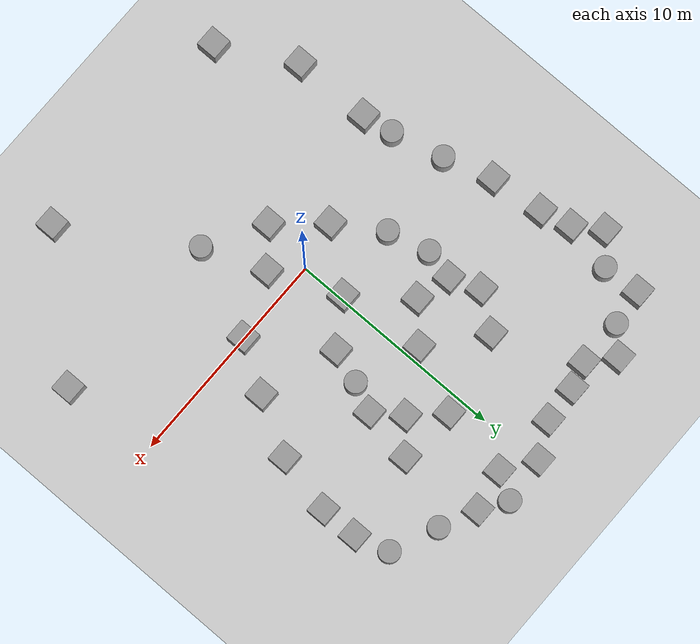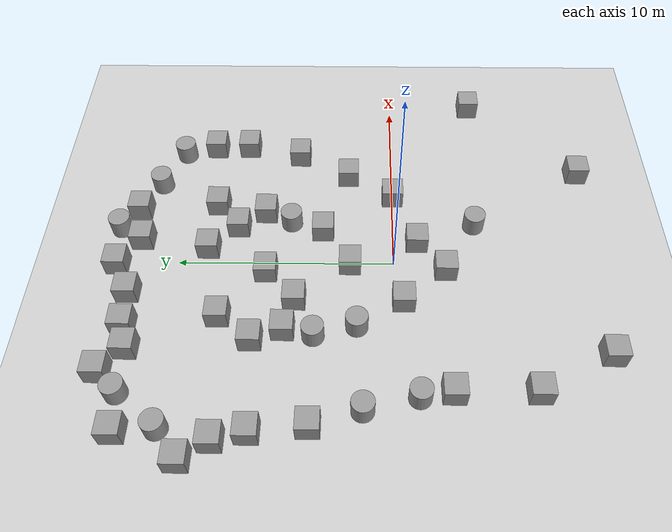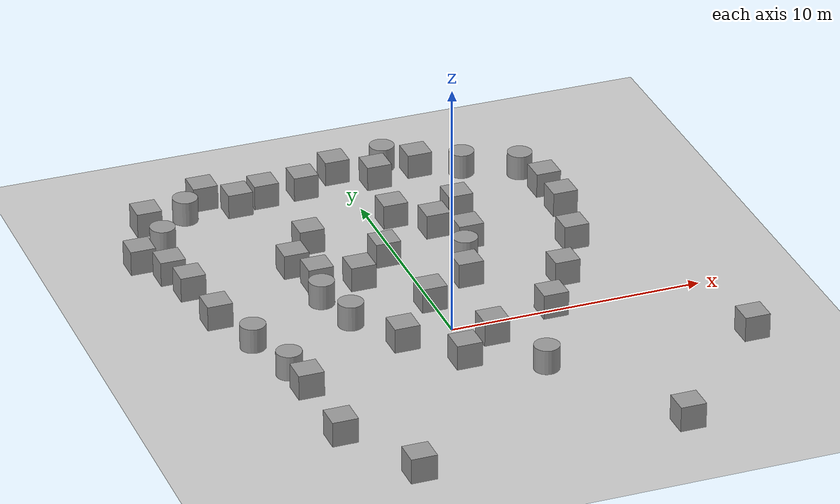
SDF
<sdf version="1.6">
 <world name="default">
  <scene><ambient>0.4 0.4 0.4 1</ambient><background>0.7 0.7 0.7 1</background><shadows>0</shadows></scene>
  <light name="sun" type="directional">
   <cast_shadows>0</cast_shadows>
   <pose>0 0 10 0 -0 0</pose>
   <diffuse>0.8 0.8 0.8 1</diffuse>
   <specular>0.2 0.2 0.2 1</specular>
   <attenuation>
    <range>1000</range>
    <constant>0.9</constant>
    <linear>0.01</linear>
    <quadratic>0.001</quadratic>
   </attenuation>
   <direction>-0.5 0.1 -0.9</direction>
  </light>
  <model name="ground_plane">
   <static>1</static>
   <link name="link">
    <collision name="collision">
     <geometry><plane><normal>0 0 1</normal><size>100 100</size></plane></geometry>
     <surface><friction><ode><mu>100</mu><mu2>50</mu2></ode></friction></surface>
    </collision>
    <visual name="visual">
     <cast_shadows>0</cast_shadows>
     <geometry><plane><normal>0 0 1</normal><size>100 100</size></plane></geometry>
     <material>
      <script><uri>file://media/materials/scripts/gazebo.material</uri><name>Gazebo/Grey</name></script>
     </material>
    </visual>
   </link>
  </model>
  <physics name="default_physics" default="0" type="ode">
   <real_time_update_rate>1000</real_time_update_rate>
   <max_step_size>0.001</max_step_size>
   <real_time_factor>1</real_time_factor>
   <ode>
    <solver>
     <type>quick</type>
     <iters>150</iters>
     <precon_iters>0</precon_iters>
     <sor>1.4</sor>
     <use_dynamic_moi_rescaling>1</use_dynamic_moi_rescaling>
    </solver>
    <constraints>
     <cfm>1e-05</cfm>
     <erp>0.2</erp>
     <contact_max_correcting_vel>2000</contact_max_correcting_vel>
     <contact_surface_layer>0.01</contact_surface_layer>
    </constraints>
   </ode>
  </physics>
  <gravity>0 0 -9.8</gravity>
  <magnetic_field>6e-06 2.3e-05 -4.2e-05</magnetic_field>
  <atmosphere type="adiabatic"/>
  <spherical_coordinates>
   <surface_model>EARTH_WGS84</surface_model>
   <latitude_deg>0</latitude_deg>
   <longitude_deg>0</longitude_deg>
   <elevation>0</elevation>
   <heading_deg>0</heading_deg>
  </spherical_coordinates>
  <light name="user_spot_light_0" type="spot">
   <pose>2.99649 2.01794 1 0 -0 0</pose>
   <diffuse>0.5 0.5 0.5 1</diffuse>
   <specular>0.1 0.1 0.1 1</specular>
   <direction>0 0 -1</direction>
   <attenuation>
    <range>20</range>
    <constant>0.5</constant>
    <linear>0.01</linear>
    <quadratic>0.001</quadratic>
   </attenuation>
   <cast_shadows>0</cast_shadows>
   <spot><inner_angle>0.6</inner_angle><outer_angle>1</outer_angle><falloff>1</falloff></spot>
  </light>
  <light name="user_spot_light_1" type="spot">
   <pose>4.97421 7.05292 1 0 -0 0</pose>
   <diffuse>0.5 0.5 0.5 1</diffuse>
   <specular>0.1 0.1 0.1 1</specular>
   <direction>0 0 -1</direction>
   <attenuation>
    <range>20</range>
    <constant>0.5</constant>
    <linear>0.01</linear>
    <quadratic>0.001</quadratic>
   </attenuation>
   <cast_shadows>0</cast_shadows>
   <spot><inner_angle>0.6</inner_angle><outer_angle>1</outer_angle><falloff>1</falloff></spot>
  </light>
  <light name="user_spot_light_2" type="spot">
   <pose>5.00519 9.95841 1 0 -0 0</pose>
   <diffuse>0.5 0.5 0.5 1</diffuse>
   <specular>0.1 0.1 0.1 1</specular>
   <direction>0 0 -1</direction>
   <attenuation>
    <range>20</range>
    <constant>0.5</constant>
    <linear>0.01</linear>
    <quadratic>0.001</quadratic>
   </attenuation>
   <cast_shadows>0</cast_shadows>
   <spot><inner_angle>0.6</inner_angle><outer_angle>1</outer_angle><falloff>1</falloff></spot>
  </light>
  <light name="user_spot_light_3" type="spot">
   <pose>-6.05257 10.0097 1 0 -0 0</pose>
   <diffuse>0.5 0.5 0.5 1</diffuse>
   <specular>0.1 0.1 0.1 1</specular>
   <direction>0 0 -1</direction>
   <attenuation>
    <range>20</range>
    <constant>0.5</constant>
    <linear>0.01</linear>
    <quadratic>0.001</quadratic>
   </attenuation>
   <cast_shadows>0</cast_shadows>
   <spot><inner_angle>0.6</inner_angle><outer_angle>1</outer_angle><falloff>1</falloff></spot>
  </light>
  <light name="user_spot_light_4" type="spot">
   <pose>-6.04868 3.07764 1 0 -0 0</pose>
   <diffuse>0.5 0.5 0.5 1</diffuse>
   <specular>0.1 0.1 0.1 1</specular>
   <direction>0 0 -1</direction>
   <attenuation>
    <range>20</range>
    <constant>0.5</constant>
    <linear>0.01</linear>
    <quadratic>0.001</quadratic>
   </attenuation>
   <cast_shadows>0</cast_shadows>
   <spot><inner_angle>0.6</inner_angle><outer_angle>1</outer_angle><falloff>1</falloff></spot>
  </light>
  <light name="user_spot_light_5" type="spot">
   <pose>-3.03355 -4.9648 1 0 -0 0</pose>
   <diffuse>0.5 0.5 0.5 1</diffuse>
   <specular>0.1 0.1 0.1 1</specular>
   <direction>0 0 -1</direction>
   <attenuation>
    <range>20</range>
    <constant>0.5</constant>
    <linear>0.01</linear>
    <quadratic>0.001</quadratic>
   </attenuation>
   <cast_shadows>0</cast_shadows>
   <spot><inner_angle>0.6</inner_angle><outer_angle>1</outer_angle><falloff>1</falloff></spot>
  </light>
  <light name="user_spot_light_6" type="spot">
   <pose>2.95488 -8.02776 1 0 -0 0</pose>
   <diffuse>0.5 0.5 0.5 1</diffuse>
   <specular>0.1 0.1 0.1 1</specular>
   <direction>0 0 -1</direction>
   <attenuation>
    <range>20</range>
    <constant>0.5</constant>
    <linear>0.01</linear>
    <quadratic>0.001</quadratic>
   </attenuation>
   <cast_shadows>0</cast_shadows>
   <spot><inner_angle>0.6</inner_angle><outer_angle>1</outer_angle><falloff>1</falloff></spot>
  </light>
  <light name="user_spot_light_7" type="spot">
   <pose>7.01005 -3.95731 1 0 -0 0</pose>
   <diffuse>0.5 0.5 0.5 1</diffuse>
   <specular>0.1 0.1 0.1 1</specular>
   <direction>0 0 -1</direction>
   <attenuation>
    <range>20</range>
    <constant>0.5</constant>
    <linear>0.01</linear>
    <quadratic>0.001</quadratic>
   </attenuation>
   <cast_shadows>0</cast_shadows>
   <spot><inner_angle>0.6</inner_angle><outer_angle>1</outer_angle><falloff>1</falloff></spot>
  </light>
  <light name="user_spot_light_8" type="spot">
   <pose>9.95353 0.036944 1 0 -0 0</pose>
   <diffuse>0.5 0.5 0.5 1</diffuse>
   <specular>0.1 0.1 0.1 1</specular>
   <direction>0 0 -1</direction>
   <attenuation>
    <range>20</range>
    <constant>0.5</constant>
    <linear>0.01</linear>
    <quadratic>0.001</quadratic>
   </attenuation>
   <cast_shadows>0</cast_shadows>
   <spot><inner_angle>0.6</inner_angle><outer_angle>1</outer_angle><falloff>1</falloff></spot>
  </light>
  <model name="unit_box">
   <pose>-0.110138 2.02069 0.5 0 -0 0</pose>
   <link name="link">
    <inertial>
     <mass>1</mass>
     <inertia>
      <ixx>0.166667</ixx>
      <ixy>0</ixy>
      <ixz>0</ixz>
      <iyy>0.166667</iyy>
      <iyz>0</iyz>
      <izz>0.166667</izz>
     </inertia>
    </inertial>
    <collision name="collision"><geometry><box><size>1 1 1</size></box></geometry></collision>
    <visual name="visual">
     <geometry><box><size>1 1 1</size></box></geometry>
     <material>
      <script><name>Gazebo/Grey</name><uri>file://media/materials/scripts/gazebo.material</uri></script>
     </material>
    </visual>
   </link>
  </model>
  <model name="unit_box_0">
   <pose>1.18907 -1.10093 0.5 0 -0 0</pose>
   <link name="link">
    <inertial>
     <mass>1</mass>
     <inertia>
      <ixx>0.166667</ixx>
      <ixy>0</ixy>
      <ixz>0</ixz>
      <iyy>0.166667</iyy>
      <iyz>0</iyz>
      <izz>0.166667</izz>
     </inertia>
    </inertial>
    <collision name="collision"><geometry><box><size>1 1 1</size></box></geometry></collision>
    <visual name="visual">
     <geometry><box><size>1 1 1</size></box></geometry>
     <material>
      <script><name>Gazebo/Grey</name><uri>file://media/materials/scripts/gazebo.material</uri></script>
     </material>
    </visual>
   </link>
  </model>
  <model name="unit_box_1">
   <pose>3.98694 -0.006782 0.5 0 -0 0</pose>
   <link name="link">
    <inertial>
     <mass>1</mass>
     <inertia>
      <ixx>0.166667</ixx>
      <ixy>0</ixy>
      <ixz>0</ixz>
      <iyy>0.166667</iyy>
      <iyz>0</iyz>
      <izz>0.166667</izz>
     </inertia>
    </inertial>
    <collision name="collision"><geometry><box><size>1 1 1</size></box></geometry></collision>
    <visual name="visual">
     <geometry><box><size>1 1 1</size></box></geometry>
     <material>
      <script><name>Gazebo/Grey</name><uri>file://media/materials/scripts/gazebo.material</uri></script>
     </material>
    </visual>
   </link>
  </model>
  <model name="unit_box_2">
   <pose>1.84922 3.31867 0.5 0 -0 0</pose>
   <link name="link">
    <inertial>
     <mass>1</mass>
     <inertia>
      <ixx>0.166667</ixx>
      <ixy>0</ixy>
      <ixz>0</ixz>
      <iyy>0.166667</iyy>
      <iyz>0</iyz>
      <izz>0.166667</izz>
     </inertia>
    </inertial>
    <collision name="collision"><geometry><box><size>1 1 1</size></box></geometry></collision>
    <visual name="visual">
     <geometry><box><size>1 1 1</size></box></geometry>
     <material>
      <script><name>Gazebo/Grey</name><uri>file://media/materials/scripts/gazebo.material</uri></script>
     </material>
    </visual>
   </link>
  </model>
  <model name="unit_box_3">
   <pose>5.31989 2.15664 0.5 0 -0 0</pose>
   <link name="link">
    <inertial>
     <mass>1</mass>
     <inertia>
      <ixx>0.166667</ixx>
      <ixy>0</ixy>
      <ixz>0</ixz>
      <iyy>0.166667</iyy>
      <iyz>0</iyz>
      <izz>0.166667</izz>
     </inertia>
    </inertial>
    <collision name="collision"><geometry><box><size>1 1 1</size></box></geometry></collision>
    <visual name="visual">
     <geometry><box><size>1 1 1</size></box></geometry>
     <material>
      <script><name>Gazebo/Grey</name><uri>file://media/materials/scripts/gazebo.material</uri></script>
     </material>
    </visual>
   </link>
  </model>
  <model name="unit_box_4">
   <pose>6.69057 4.63414 0.5 0 -0 0</pose>
   <link name="link">
    <inertial>
     <mass>1</mass>
     <inertia>
      <ixx>0.166667</ixx>
      <ixy>0</ixy>
      <ixz>0</ixz>
      <iyy>0.166667</iyy>
      <iyz>0</iyz>
      <izz>0.166667</izz>
     </inertia>
    </inertial>
    <collision name="collision"><geometry><box><size>1 1 1</size></box></geometry></collision>
    <visual name="visual">
     <geometry><box><size>1 1 1</size></box></geometry>
     <material>
      <script><name>Gazebo/Grey</name><uri>file://media/materials/scripts/gazebo.material</uri></script>
     </material>
    </visual>
   </link>
  </model>
  <model name="unit_box_5">
   <pose>2.92873 6.08927 0.5 0 -0 0</pose>
   <link name="link">
    <inertial>
     <mass>1</mass>
     <inertia>
      <ixx>0.166667</ixx>
      <ixy>0</ixy>
      <ixz>0</ixz>
      <iyy>0.166667</iyy>
      <iyz>0</iyz>
      <izz>0.166667</izz>
     </inertia>
    </inertial>
    <collision name="collision"><geometry><box><size>1 1 1</size></box></geometry></collision>
    <visual name="visual">
     <geometry><box><size>1 1 1</size></box></geometry>
     <material>
      <script><name>Gazebo/Grey</name><uri>file://media/materials/scripts/gazebo.material</uri></script>
     </material>
    </visual>
   </link>
  </model>
  <model name="unit_box_6">
   <pose>7.28308 7.28413 0.5 0 -0 0</pose>
   <link name="link">
    <inertial>
     <mass>1</mass>
     <inertia>
      <ixx>0.166667</ixx>
      <ixy>0</ixy>
      <ixz>0</ixz>
      <iyy>0.166667</iyy>
      <iyz>0</iyz>
      <izz>0.166667</izz>
     </inertia>
    </inertial>
    <collision name="collision"><geometry><box><size>1 1 1</size></box></geometry></collision>
    <visual name="visual">
     <geometry><box><size>1 1 1</size></box></geometry>
     <material>
      <script><name>Gazebo/Grey</name><uri>file://media/materials/scripts/gazebo.material</uri></script>
     </material>
    </visual>
   </link>
  </model>
  <model name="unit_cylinder">
   <pose>2.36445 4.8414 0.5 0 -0 0</pose>
   <link name="link">
    <inertial>
     <mass>1</mass>
     <inertia><ixx>0.145833</ixx><ixy>0</ixy><ixz>0</ixz><iyy>0.145833</iyy><iyz>0</iyz><izz>0.125</izz></inertia>
    </inertial>
    <collision name="collision">
     <geometry><cylinder><radius>0.5</radius><length>1</length></cylinder></geometry>
    </collision>
    <visual name="visual">
     <geometry><cylinder><radius>0.5</radius><length>1</length></cylinder></geometry>
     <material>
      <script><name>Gazebo/Grey</name><uri>file://media/materials/scripts/gazebo.material</uri></script>
     </material>
    </visual>
   </link>
  </model>
  <model name="unit_cylinder_0">
   <pose>4.72709 11.4383 0.5 -0 -0 -0</pose>
   <link name="link">
    <inertial>
     <mass>1</mass>
     <inertia><ixx>0.145833</ixx><ixy>0</ixy><ixz>0</ixz><iyy>0.145833</iyy><iyz>0</iyz><izz>0.125</izz></inertia>
    </inertial>
    <collision name="collision">
     <geometry><cylinder><radius>0.5</radius><length>1</length></cylinder></geometry>
    </collision>
    <visual name="visual">
     <geometry><cylinder><radius>0.5</radius><length>1</length></cylinder></geometry>
     <material>
      <script><name>Gazebo/Grey</name><uri>file://media/materials/scripts/gazebo.material</uri></script>
     </material>
    </visual>
   </link>
  </model>
  <model name="unit_cylinder_1">
   <pose>6.83244 10.5301 0.5 0 -0 0</pose>
   <link name="link">
    <inertial>
     <mass>1</mass>
     <inertia><ixx>0.145833</ixx><ixy>0</ixy><ixz>0</ixz><iyy>0.145833</iyy><iyz>0</iyz><izz>0.125</izz></inertia>
    </inertial>
    <collision name="collision">
     <geometry><cylinder><radius>0.5</radius><length>1</length></cylinder></geometry>
    </collision>
    <visual name="visual">
     <geometry><cylinder><radius>0.5</radius><length>1</length></cylinder></geometry>
     <material>
      <script><name>Gazebo/Grey</name><uri>file://media/materials/scripts/gazebo.material</uri></script>
     </material>
    </visual>
   </link>
  </model>
  <model name="unit_box_7">
   <pose>3.38625 8.46279 0.5 0 -0 0</pose>
   <link name="link">
    <inertial>
     <mass>1</mass>
     <inertia>
      <ixx>0.166667</ixx>
      <ixy>0</ixy>
      <ixz>0</ixz>
      <iyy>0.166667</iyy>
      <iyz>0</iyz>
      <izz>0.166667</izz>
     </inertia>
    </inertial>
    <collision name="collision"><geometry><box><size>1 1 1</size></box></geometry></collision>
    <visual name="visual">
     <geometry><box><size>1 1 1</size></box></geometry>
     <material>
      <script><name>Gazebo/Grey</name><uri>file://media/materials/scripts/gazebo.material</uri></script>
     </material>
    </visual>
   </link>
  </model>
  <model name="unit_box_8">
   <pose>0.769093 8.65438 0.5 0 -0 0</pose>
   <link name="link">
    <inertial>
     <mass>1</mass>
     <inertia>
      <ixx>0.166667</ixx>
      <ixy>0</ixy>
      <ixz>0</ixz>
      <iyy>0.166667</iyy>
      <iyz>0</iyz>
      <izz>0.166667</izz>
     </inertia>
    </inertial>
    <collision name="collision"><geometry><box><size>1 1 1</size></box></geometry></collision>
    <visual name="visual">
     <geometry><box><size>1 1 1</size></box></geometry>
     <material>
      <script><name>Gazebo/Grey</name><uri>file://media/materials/scripts/gazebo.material</uri></script>
     </material>
    </visual>
   </link>
  </model>
  <model name="unit_box_9">
   <pose>-0.548805 5.87007 0.5 0 -0 0</pose>
   <link name="link">
    <inertial>
     <mass>1</mass>
     <inertia>
      <ixx>0.166667</ixx>
      <ixy>0</ixy>
      <ixz>0</ixz>
      <iyy>0.166667</iyy>
      <iyz>0</iyz>
      <izz>0.166667</izz>
     </inertia>
    </inertial>
    <collision name="collision"><geometry><box><size>1 1 1</size></box></geometry></collision>
    <visual name="visual">
     <geometry><box><size>1 1 1</size></box></geometry>
     <material>
      <script><name>Gazebo/Grey</name><uri>file://media/materials/scripts/gazebo.material</uri></script>
     </material>
    </visual>
   </link>
  </model>
  <model name="unit_box_10">
   <pose>-2.94586 7.81511 0.5 0 -0 0</pose>
   <link name="link">
    <inertial>
     <mass>1</mass>
     <inertia>
      <ixx>0.166667</ixx>
      <ixy>0</ixy>
      <ixz>0</ixz>
      <iyy>0.166667</iyy>
      <iyz>0</iyz>
      <izz>0.166667</izz>
     </inertia>
    </inertial>
    <collision name="collision"><geometry><box><size>1 1 1</size></box></geometry></collision>
    <visual name="visual">
     <geometry><box><size>1 1 1</size></box></geometry>
     <material>
      <script><name>Gazebo/Grey</name><uri>file://media/materials/scripts/gazebo.material</uri></script>
     </material>
    </visual>
   </link>
  </model>
  <model name="unit_box_11">
   <pose>-2.052 4.49656 0.5 0 -0 0</pose>
   <link name="link">
    <inertial>
     <mass>1</mass>
     <inertia>
      <ixx>0.166667</ixx>
      <ixy>0</ixy>
      <ixz>0</ixz>
      <iyy>0.166667</iyy>
      <iyz>0</iyz>
      <izz>0.166667</izz>
     </inertia>
    </inertial>
    <collision name="collision"><geometry><box><size>1 1 1</size></box></geometry></collision>
    <visual name="visual">
     <geometry><box><size>1 1 1</size></box></geometry>
     <material>
      <script><name>Gazebo/Grey</name><uri>file://media/materials/scripts/gazebo.material</uri></script>
     </material>
    </visual>
   </link>
  </model>
  <model name="unit_box_12">
   <pose>-9.47395 8.63115 0.5 0 -0 0</pose>
   <link name="link">
    <inertial>
     <mass>1</mass>
     <inertia>
      <ixx>0.166667</ixx>
      <ixy>0</ixy>
      <ixz>0</ixz>
      <iyy>0.166667</iyy>
      <iyz>0</iyz>
      <izz>0.166667</izz>
     </inertia>
    </inertial>
    <collision name="collision"><geometry><box><size>1 1 1</size></box></geometry></collision>
    <visual name="visual">
     <geometry><box><size>1 1 1</size></box></geometry>
     <material>
      <script><name>Gazebo/Grey</name><uri>file://media/materials/scripts/gazebo.material</uri></script>
     </material>
    </visual>
   </link>
  </model>
  <model name="unit_box_13">
   <pose>-8.34128 11.3644 0.5 0 -0 0</pose>
   <link name="link">
    <inertial>
     <mass>1</mass>
     <inertia>
      <ixx>0.166667</ixx>
      <ixy>0</ixy>
      <ixz>0</ixz>
      <iyy>0.166667</iyy>
      <iyz>0</iyz>
      <izz>0.166667</izz>
     </inertia>
    </inertial>
    <collision name="collision"><geometry><box><size>1 1 1</size></box></geometry></collision>
    <visual name="visual">
     <geometry><box><size>1 1 1</size></box></geometry>
     <material>
      <script><name>Gazebo/Grey</name><uri>file://media/materials/scripts/gazebo.material</uri></script>
     </material>
    </visual>
   </link>
  </model>
  <model name="unit_box_14">
   <pose>-4.11679 6.284 0.5 0 -0 0</pose>
   <link name="link">
    <inertial>
     <mass>1</mass>
     <inertia>
      <ixx>0.166667</ixx>
      <ixy>0</ixy>
      <ixz>0</ixz>
      <iyy>0.166667</iyy>
      <iyz>0</iyz>
      <izz>0.166667</izz>
     </inertia>
    </inertial>
    <collision name="collision"><geometry><box><size>1 1 1</size></box></geometry></collision>
    <visual name="visual">
     <geometry><box><size>1 1 1</size></box></geometry>
     <material>
      <script><name>Gazebo/Grey</name><uri>file://media/materials/scripts/gazebo.material</uri></script>
     </material>
    </visual>
   </link>
  </model>
  <model name="unit_cylinder_2">
   <pose>-8.20309 9.67764 0.5 -0 -0 -0</pose>
   <link name="link">
    <inertial>
     <mass>1</mass>
     <inertia><ixx>0.145833</ixx><ixy>0</ixy><ixz>0</ixz><iyy>0.145833</iyy><iyz>0</iyz><izz>0.125</izz></inertia>
    </inertial>
    <collision name="collision">
     <geometry><cylinder><radius>0.5</radius><length>1</length></cylinder></geometry>
    </collision>
    <visual name="visual">
     <geometry><cylinder><radius>0.5</radius><length>1</length></cylinder></geometry>
     <material>
      <script><name>Gazebo/Grey</name><uri>file://media/materials/scripts/gazebo.material</uri></script>
     </material>
    </visual>
   </link>
  </model>
  <model name="unit_cylinder_3">
   <pose>-3.89265 3.58332 0.5 0 -0 0</pose>
   <link name="link">
    <inertial>
     <mass>1</mass>
     <inertia><ixx>0.145833</ixx><ixy>0</ixy><ixz>0</ixz><iyy>0.145833</iyy><iyz>0</iyz><izz>0.125</izz></inertia>
    </inertial>
    <collision name="collision">
     <geometry><cylinder><radius>0.5</radius><length>1</length></cylinder></geometry>
    </collision>
    <visual name="visual">
     <geometry><cylinder><radius>0.5</radius><length>1</length></cylinder></geometry>
     <material>
      <script><name>Gazebo/Grey</name><uri>file://media/materials/scripts/gazebo.material</uri></script>
     </material>
    </visual>
   </link>
  </model>
  <model name="unit_cylinder_4">
   <pose>-3.41207 1.68362 0.5 -0 -0 -0</pose>
   <link name="link">
    <inertial>
     <mass>1</mass>
     <inertia><ixx>0.145833</ixx><ixy>0</ixy><ixz>0</ixz><iyy>0.145833</iyy><iyz>0</iyz><izz>0.125</izz></inertia>
    </inertial>
    <collision name="collision">
     <geometry><cylinder><radius>0.5</radius><length>1</length></cylinder></geometry>
    </collision>
    <visual name="visual">
     <geometry><cylinder><radius>0.5</radius><length>1</length></cylinder></geometry>
     <material>
      <script><name>Gazebo/Grey</name><uri>file://media/materials/scripts/gazebo.material</uri></script>
     </material>
    </visual>
   </link>
  </model>
  <model name="unit_box_15">
   <pose>-8.32917 6.02056 0.5 0 -0 0</pose>
   <link name="link">
    <inertial>
     <mass>1</mass>
     <inertia>
      <ixx>0.166667</ixx>
      <ixy>0</ixy>
      <ixz>0</ixz>
      <iyy>0.166667</iyy>
      <iyz>0</iyz>
      <izz>0.166667</izz>
     </inertia>
    </inertial>
    <collision name="collision"><geometry><box><size>1 1 1</size></box></geometry></collision>
    <visual name="visual">
     <geometry><box><size>1 1 1</size></box></geometry>
     <material>
      <script><name>Gazebo/Grey</name><uri>file://media/materials/scripts/gazebo.material</uri></script>
     </material>
    </visual>
   </link>
  </model>
  <model name="unit_box_16">
   <pose>-3.39292 11.9062 0.5 0 -0 0</pose>
   <link name="link">
    <inertial>
     <mass>1</mass>
     <inertia>
      <ixx>0.166667</ixx>
      <ixy>0</ixy>
      <ixz>0</ixz>
      <iyy>0.166667</iyy>
      <iyz>0</iyz>
      <izz>0.166667</izz>
     </inertia>
    </inertial>
    <collision name="collision"><geometry><box><size>1 1 1</size></box></geometry></collision>
    <visual name="visual">
     <geometry><box><size>1 1 1</size></box></geometry>
     <material>
      <script><name>Gazebo/Grey</name><uri>file://media/materials/scripts/gazebo.material</uri></script>
     </material>
    </visual>
   </link>
  </model>
  <model name="unit_box_17">
   <pose>-0.162619 12.7806 0.5 0 -0 0</pose>
   <link name="link">
    <inertial>
     <mass>1</mass>
     <inertia>
      <ixx>0.166667</ixx>
      <ixy>0</ixy>
      <ixz>0</ixz>
      <iyy>0.166667</iyy>
      <iyz>0</iyz>
      <izz>0.166667</izz>
     </inertia>
    </inertial>
    <collision name="collision"><geometry><box><size>1 1 1</size></box></geometry></collision>
    <visual name="visual">
     <geometry><box><size>1 1 1</size></box></geometry>
     <material>
      <script><name>Gazebo/Grey</name><uri>file://media/materials/scripts/gazebo.material</uri></script>
     </material>
    </visual>
   </link>
  </model>
  <model name="unit_box_18">
   <pose>-1.72371 12.0104 0.5 0 -0 0</pose>
   <link name="link">
    <inertial>
     <mass>1</mass>
     <inertia>
      <ixx>0.166667</ixx>
      <ixy>0</ixy>
      <ixz>0</ixz>
      <iyy>0.166667</iyy>
      <iyz>0</iyz>
      <izz>0.166667</izz>
     </inertia>
    </inertial>
    <collision name="collision"><geometry><box><size>1 1 1</size></box></geometry></collision>
    <visual name="visual">
     <geometry><box><size>1 1 1</size></box></geometry>
     <material>
      <script><name>Gazebo/Grey</name><uri>file://media/materials/scripts/gazebo.material</uri></script>
     </material>
    </visual>
   </link>
  </model>
  <model name="unit_box_19">
   <pose>-5.68011 12.5489 0.5 0 -0 0</pose>
   <link name="link">
    <inertial>
     <mass>1</mass>
     <inertia>
      <ixx>0.166667</ixx>
      <ixy>0</ixy>
      <ixz>0</ixz>
      <iyy>0.166667</iyy>
      <iyz>0</iyz>
      <izz>0.166667</izz>
     </inertia>
    </inertial>
    <collision name="collision"><geometry><box><size>1 1 1</size></box></geometry></collision>
    <visual name="visual">
     <geometry><box><size>1 1 1</size></box></geometry>
     <material>
      <script><name>Gazebo/Grey</name><uri>file://media/materials/scripts/gazebo.material</uri></script>
     </material>
    </visual>
   </link>
  </model>
  <model name="unit_cylinder_5">
   <pose>1.94556 12.9796 0.5 0 -0 0</pose>
   <link name="link">
    <inertial>
     <mass>1</mass>
     <inertia><ixx>0.145833</ixx><ixy>0</ixy><ixz>0</ixz><iyy>0.145833</iyy><iyz>0</iyz><izz>0.125</izz></inertia>
    </inertial>
    <collision name="collision">
     <geometry><cylinder><radius>0.5</radius><length>1</length></cylinder></geometry>
    </collision>
    <visual name="visual">
     <geometry><cylinder><radius>0.5</radius><length>1</length></cylinder></geometry>
     <material>
      <script><name>Gazebo/Grey</name><uri>file://media/materials/scripts/gazebo.material</uri></script>
     </material>
    </visual>
   </link>
  </model>
  <model name="unit_box_20">
   <pose>3.08868 12.2019 0.5 0 -0 0</pose>
   <link name="link">
    <inertial>
     <mass>1</mass>
     <inertia>
      <ixx>0.166667</ixx>
      <ixy>0</ixy>
      <ixz>0</ixz>
      <iyy>0.166667</iyy>
      <iyz>0</iyz>
      <izz>0.166667</izz>
     </inertia>
    </inertial>
    <collision name="collision"><geometry><box><size>1 1 1</size></box></geometry></collision>
    <visual name="visual">
     <geometry><box><size>1 1 1</size></box></geometry>
     <material>
      <script><name>Gazebo/Grey</name><uri>file://media/materials/scripts/gazebo.material</uri></script>
     </material>
    </visual>
   </link>
  </model>
  <model name="unit_box_21">
   <pose>1.25012 11.8235 0.5 0 -0 0</pose>
   <link name="link">
    <inertial>
     <mass>1</mass>
     <inertia>
      <ixx>0.166667</ixx>
      <ixy>0</ixy>
      <ixz>0</ixz>
      <iyy>0.166667</iyy>
      <iyz>0</iyz>
      <izz>0.166667</izz>
     </inertia>
    </inertial>
    <collision name="collision"><geometry><box><size>1 1 1</size></box></geometry></collision>
    <visual name="visual">
     <geometry><box><size>1 1 1</size></box></geometry>
     <material>
      <script><name>Gazebo/Grey</name><uri>file://media/materials/scripts/gazebo.material</uri></script>
     </material>
    </visual>
   </link>
  </model>
  <model name="unit_cylinder_6">
   <pose>-6.67476 11.5787 0.5 -0 -0 -0</pose>
   <link name="link">
    <inertial>
     <mass>1</mass>
     <inertia><ixx>0.145833</ixx><ixy>0</ixy><ixz>0</ixz><iyy>0.145833</iyy><iyz>0</iyz><izz>0.125</izz></inertia>
    </inertial>
    <collision name="collision">
     <geometry><cylinder><radius>0.5</radius><length>1</length></cylinder></geometry>
    </collision>
    <visual name="visual">
     <geometry><cylinder><radius>0.5</radius><length>1</length></cylinder></geometry>
     <material>
      <script><name>Gazebo/Grey</name><uri>file://media/materials/scripts/gazebo.material</uri></script>
     </material>
    </visual>
   </link>
  </model>
  <model name="unit_box_22">
   <pose>-4.57103 11.5702 0.5 0 -0 0</pose>
   <link name="link">
    <inertial>
     <mass>1</mass>
     <inertia>
      <ixx>0.166667</ixx>
      <ixy>0</ixy>
      <ixz>0</ixz>
      <iyy>0.166667</iyy>
      <iyz>0</iyz>
      <izz>0.166667</izz>
     </inertia>
    </inertial>
    <collision name="collision"><geometry><box><size>1 1 1</size></box></geometry></collision>
    <visual name="visual">
     <geometry><box><size>1 1 1</size></box></geometry>
     <material>
      <script><name>Gazebo/Grey</name><uri>file://media/materials/scripts/gazebo.material</uri></script>
     </material>
    </visual>
   </link>
  </model>
  <model name="unit_box_23">
   <pose>-8.66905 7.42388 0.5 0 -0 0</pose>
   <link name="link">
    <inertial>
     <mass>1</mass>
     <inertia>
      <ixx>0.166667</ixx>
      <ixy>0</ixy>
      <ixz>0</ixz>
      <iyy>0.166667</iyy>
      <iyz>0</iyz>
      <izz>0.166667</izz>
     </inertia>
    </inertial>
    <collision name="collision"><geometry><box><size>1 1 1</size></box></geometry></collision>
    <visual name="visual">
     <geometry><box><size>1 1 1</size></box></geometry>
     <material>
      <script><name>Gazebo/Grey</name><uri>file://media/materials/scripts/gazebo.material</uri></script>
     </material>
    </visual>
   </link>
  </model>
  <model name="unit_box_24">
   <pose>-2.10483 -0.400888 0.5 0 -0 0</pose>
   <link name="link">
    <inertial>
     <mass>1</mass>
     <inertia>
      <ixx>0.166667</ixx>
      <ixy>0</ixy>
      <ixz>0</ixz>
      <iyy>0.166667</iyy>
      <iyz>0</iyz>
      <izz>0.166667</izz>
     </inertia>
    </inertial>
    <collision name="collision"><geometry><box><size>1 1 1</size></box></geometry></collision>
    <visual name="visual">
     <geometry><box><size>1 1 1</size></box></geometry>
     <material>
      <script><name>Gazebo/Grey</name><uri>file://media/materials/scripts/gazebo.material</uri></script>
     </material>
    </visual>
   </link>
  </model>
  <model name="unit_box_25">
   <pose>-0.379668 -2.37132 0.5 0 -0 0</pose>
   <link name="link">
    <inertial>
     <mass>1</mass>
     <inertia>
      <ixx>0.166667</ixx>
      <ixy>0</ixy>
      <ixz>0</ixz>
      <iyy>0.166667</iyy>
      <iyz>0</iyz>
      <izz>0.166667</izz>
     </inertia>
    </inertial>
    <collision name="collision"><geometry><box><size>1 1 1</size></box></geometry></collision>
    <visual name="visual">
     <geometry><box><size>1 1 1</size></box></geometry>
     <material>
      <script><name>Gazebo/Grey</name><uri>file://media/materials/scripts/gazebo.material</uri></script>
     </material>
    </visual>
   </link>
  </model>
  <model name="unit_cylinder_7">
   <pose>2.26215 -3.87168 0.5 0 -0 0</pose>
   <link name="link">
    <inertial>
     <mass>1</mass>
     <inertia><ixx>0.145833</ixx><ixy>0</ixy><ixz>0</ixz><iyy>0.145833</iyy><iyz>0</iyz><izz>0.125</izz></inertia>
    </inertial>
    <collision name="collision">
     <geometry><cylinder><radius>0.5</radius><length>1</length></cylinder></geometry>
    </collision>
    <visual name="visual">
     <geometry><cylinder><radius>0.5</radius><length>1</length></cylinder></geometry>
     <material>
      <script><name>Gazebo/Grey</name><uri>file://media/materials/scripts/gazebo.material</uri></script>
     </material>
    </visual>
   </link>
  </model>
  <model name="unit_box_28">
   <pose>5.60652 -9.31028 0.5 0 -0 0</pose>
   <link name="link">
    <inertial>
     <mass>1</mass>
     <inertia>
      <ixx>0.166667</ixx>
      <ixy>0</ixy>
      <ixz>0</ixz>
      <iyy>0.166667</iyy>
      <iyz>0</iyz>
      <izz>0.166667</izz>
     </inertia>
    </inertial>
    <collision name="collision"><geometry><box><size>1 1 1</size></box></geometry></collision>
    <visual name="visual">
     <geometry><box><size>1 1 1</size></box></geometry>
     <material>
      <script><name>Gazebo/Grey</name><uri>file://media/materials/scripts/gazebo.material</uri></script>
     </material>
    </visual>
   </link>
  </model>
  <model name="unit_box_29">
   <pose>-8.07007 3.60168 0.5 0 -0 0</pose>
   <link name="link">
    <inertial>
     <mass>1</mass>
     <inertia>
      <ixx>0.166667</ixx>
      <ixy>0</ixy>
      <ixz>0</ixz>
      <iyy>0.166667</iyy>
      <iyz>0</iyz>
      <izz>0.166667</izz>
     </inertia>
    </inertial>
    <collision name="collision"><geometry><box><size>1 1 1</size></box></geometry></collision>
    <visual name="visual">
     <geometry><box><size>1 1 1</size></box></geometry>
     <material>
      <script><name>Gazebo/Grey</name><uri>file://media/materials/scripts/gazebo.material</uri></script>
     </material>
    </visual>
   </link>
  </model>
  <model name="unit_cylinder_8">
   <pose>-7.36489 1.41137 0.5 0 -0 0</pose>
   <link name="link">
    <inertial>
     <mass>1</mass>
     <inertia><ixx>0.145833</ixx><ixy>0</ixy><ixz>0</ixz><iyy>0.145833</iyy><iyz>0</iyz><izz>0.125</izz></inertia>
    </inertial>
    <collision name="collision">
     <geometry><cylinder><radius>0.5</radius><length>1</length></cylinder></geometry>
    </collision>
    <visual name="visual">
     <geometry><cylinder><radius>0.5</radius><length>1</length></cylinder></geometry>
     <material>
      <script><name>Gazebo/Grey</name><uri>file://media/materials/scripts/gazebo.material</uri></script>
     </material>
    </visual>
   </link>
  </model>
  <model name="unit_cylinder_9">
   <pose>-6.7658 -0.954392 0.5 0 -0 0</pose>
   <link name="link">
    <inertial>
     <mass>1</mass>
     <inertia><ixx>0.145833</ixx><ixy>0</ixy><ixz>0</ixz><iyy>0.145833</iyy><iyz>0</iyz><izz>0.125</izz></inertia>
    </inertial>
    <collision name="collision">
     <geometry><cylinder><radius>0.5</radius><length>1</length></cylinder></geometry>
    </collision>
    <visual name="visual">
     <geometry><cylinder><radius>0.5</radius><length>1</length></cylinder></geometry>
     <material>
      <script><name>Gazebo/Grey</name><uri>file://media/materials/scripts/gazebo.material</uri></script>
     </material>
    </visual>
   </link>
  </model>
  <model name="unit_box_27">
   <pose>-6.50383 -5.87794 0.5 0 -0 0</pose>
   <link name="link">
    <inertial>
     <mass>1</mass>
     <inertia>
      <ixx>0.166667</ixx>
      <ixy>0</ixy>
      <ixz>0</ixz>
      <iyy>0.166667</iyy>
      <iyz>0</iyz>
      <izz>0.166667</izz>
     </inertia>
    </inertial>
    <collision name="collision"><geometry><box><size>1 1 1</size></box></geometry></collision>
    <visual name="visual">
     <geometry><box><size>1 1 1</size></box></geometry>
     <material>
      <script><name>Gazebo/Grey</name><uri>file://media/materials/scripts/gazebo.material</uri></script>
     </material>
    </visual>
   </link>
  </model>
  <model name="unit_box_30">
   <pose>-4.73374 -9.22974 0.5 0 -0 0</pose>
   <link name="link">
    <inertial>
     <mass>1</mass>
     <inertia>
      <ixx>0.166667</ixx>
      <ixy>0</ixy>
      <ixz>0</ixz>
      <iyy>0.166667</iyy>
      <iyz>0</iyz>
      <izz>0.166667</izz>
     </inertia>
    </inertial>
    <collision name="collision"><geometry><box><size>1 1 1</size></box></geometry></collision>
    <visual name="visual">
     <geometry><box><size>1 1 1</size></box></geometry>
     <material>
      <script><name>Gazebo/Grey</name><uri>file://media/materials/scripts/gazebo.material</uri></script>
     </material>
    </visual>
   </link>
  </model>
  <model name="unit_box_31">
   <pose>10.3793 -4.19347 0.5 0 -0 0</pose>
   <link name="link">
    <inertial>
     <mass>1</mass>
     <inertia>
      <ixx>0.166667</ixx>
      <ixy>0</ixy>
      <ixz>0</ixz>
      <iyy>0.166667</iyy>
      <iyz>0</iyz>
      <izz>0.166667</izz>
     </inertia>
    </inertial>
    <collision name="collision"><geometry><box><size>1 1 1</size></box></geometry></collision>
    <visual name="visual">
     <geometry><box><size>1 1 1</size></box></geometry>
     <material>
      <script><name>Gazebo/Grey</name><uri>file://media/materials/scripts/gazebo.material</uri></script>
     </material>
    </visual>
   </link>
  </model>
  <model name="unit_box_26">
   <pose>2.04812 7.33666 0.5 0 -0 0</pose>
   <link name="link">
    <inertial>
     <mass>1</mass>
     <inertia>
      <ixx>0.166667</ixx>
      <ixy>0</ixy>
      <ixz>0</ixz>
      <iyy>0.166667</iyy>
      <iyz>0</iyz>
      <izz>0.166667</izz>
     </inertia>
    </inertial>
    <collision name="collision"><geometry><box><size>1 1 1</size></box></geometry></collision>
    <visual name="visual">
     <geometry><box><size>1 1 1</size></box></geometry>
     <material>
      <script><name>Gazebo/Grey</name><uri>file://media/materials/scripts/gazebo.material</uri></script>
     </material>
    </visual>
   </link>
  </model>
  <model name="unit_box_32">
   <pose>7.25158 8.97376 0.5 0 -0 0</pose>
   <link name="link">
    <inertial>
     <mass>1</mass>
     <inertia>
      <ixx>0.166667</ixx>
      <ixy>0</ixy>
      <ixz>0</ixz>
      <iyy>0.166667</iyy>
      <iyz>0</iyz>
      <izz>0.166667</izz>
     </inertia>
    </inertial>
    <collision name="collision"><geometry><box><size>1 1 1</size></box></geometry></collision>
    <visual name="visual">
     <geometry><box><size>1 1 1</size></box></geometry>
     <material>
      <script><name>Gazebo/Grey</name><uri>file://media/materials/scripts/gazebo.material</uri></script>
     </material>
    </visual>
   </link>
  </model>
  <model name="unit_box_33">
   <pose>-3.60976 4.91293 0.5 0 -0 0</pose>
   <link name="link">
    <inertial>
     <mass>1</mass>
     <inertia>
      <ixx>0.166667</ixx>
      <ixy>0</ixy>
      <ixz>0</ixz>
      <iyy>0.166667</iyy>
      <iyz>0</iyz>
      <izz>0.166667</izz>
     </inertia>
    </inertial>
    <collision name="collision"><geometry><box><size>1 1 1</size></box></geometry></collision>
    <visual name="visual">
     <geometry><box><size>1 1 1</size></box></geometry>
     <material>
      <script><name>Gazebo/Grey</name><uri>file://media/materials/scripts/gazebo.material</uri></script>
     </material>
    </visual>
   </link>
  </model>
  <model name="unit_box_34">
   <pose>-6.55141 -2.35078 0.5 0 -0 0</pose>
   <link name="link">
    <inertial>
     <mass>1</mass>
     <inertia>
      <ixx>0.166667</ixx>
      <ixy>0</ixy>
      <ixz>0</ixz>
      <iyy>0.166667</iyy>
      <iyz>0</iyz>
      <izz>0.166667</izz>
     </inertia>
    </inertial>
    <collision name="collision"><geometry><box><size>1 1 1</size></box></geometry></collision>
    <visual name="visual">
     <geometry><box><size>1 1 1</size></box></geometry>
     <material>
      <script><name>Gazebo/Grey</name><uri>file://media/materials/scripts/gazebo.material</uri></script>
     </material>
    </visual>
   </link>
  </model>
 </world>
</sdf>
